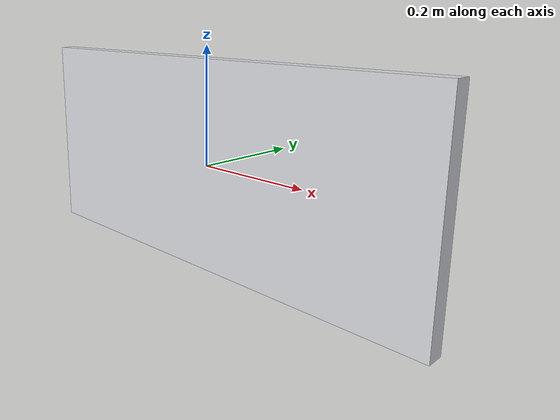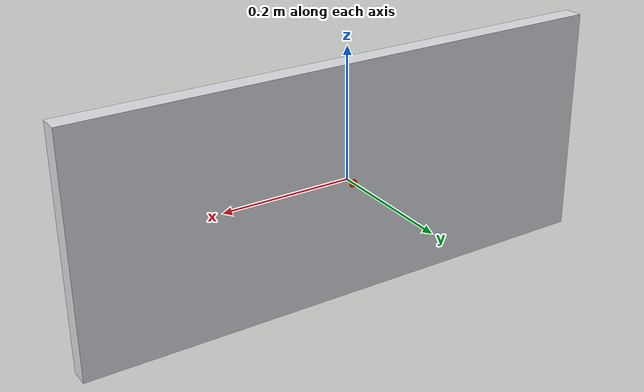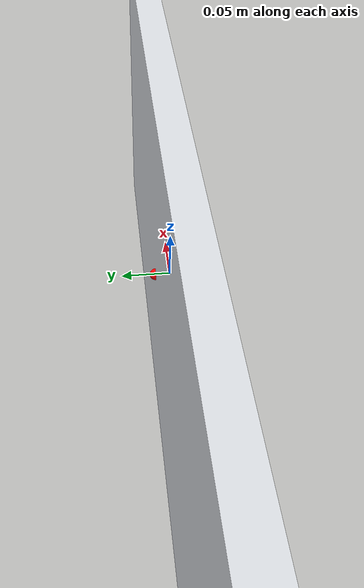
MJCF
<?xml version='1.0' encoding='utf-8'?>
<mujoco model="w2_b2_panel_base">
  <worldbody>
    <body name="panel_mount" pos="0 0 0">
      <geom name="panel_backplate" type="box" pos="0 0 0" size="0.4212 0.015 0.18" rgba="0.86 0.87 0.89 1" contype="1" conaffinity="1" />
      <site name="panel_origin" pos="0 0.015 0" size="0.006" rgba="1 0 0 1" />
    </body>
  </worldbody>
</mujoco>
